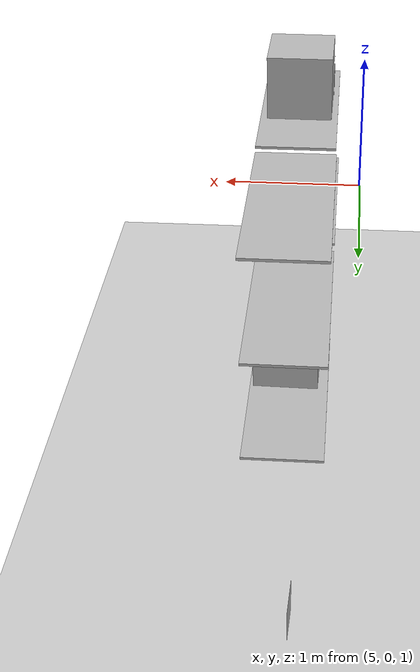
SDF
<sdf version="1.7">
 <world name="default">
  <model name="ground_plane">
   <static>1</static>
   <link name="link">
    <collision name="collision">
     <geometry><plane><normal>0 0 1</normal><size>300 300</size></plane></geometry>
     <surface>
      <contact><collide_bitmask>65535</collide_bitmask></contact>
      <friction><ode><mu>100</mu><mu2>50</mu2></ode></friction>
     </surface>
    </collision>
    <visual name="visual">
     <geometry><plane><normal>0 0 1</normal><size>100 100</size></plane></geometry>
     <material>
      <script><uri>file://media/materials/scripts/gazebo.material</uri><name>Gazebo/Grey</name></script>
     </material>
    </visual>
   </link>
  </model>
  <model name="CuboQR19">
   <link name="link">
    <pose>0 0 0.25 0 -0 0</pose>
    <inertial>
     <mass>0.39</mass>
     <inertia><ixx>0.00058</ixx><ixy>0</ixy><ixz>0</ixz><iyy>0.00058</iyy><iyz>0</iyz><izz>0.00019</izz></inertia>
    </inertial>
    <collision name="collision"><geometry><box><size>0.4 0.4 0.4</size></box></geometry></collision>
    <visual name="visual">
     <geometry><box><size>0.4 0.4 0.4</size></box></geometry>
     <material>
      <script>
       <uri>model://Caja/materials/scripts</uri>
       <uri>model://Caja/materials/textures</uri>
       <name>Caja/Diffuse</name>
      </script>
     </material>
    </visual>
   </link>
   <pose>5.15759 0.816551 2.21624 -1.54376 1.57077 -1.55301</pose>
   <static>1</static>
  </model>
  <model name="CuboQR20">
   <link name="link">
    <pose>0 0 0.25 0 -0 0</pose>
    <inertial>
     <mass>0.39</mass>
     <inertia><ixx>0.00058</ixx><ixy>0</ixy><ixz>0</ixz><iyy>0.00058</iyy><iyz>0</iyz><izz>0.00019</izz></inertia>
    </inertial>
    <collision name="collision"><geometry><box><size>0.4 0.4 0.4</size></box></geometry></collision>
    <visual name="visual">
     <geometry><box><size>0.4 0.4 0.4</size></box></geometry>
     <material>
      <script>
       <uri>model://Caja/materials/scripts</uri>
       <uri>model://Caja/materials/textures</uri>
       <name>Caja/Diffuse</name>
      </script>
     </material>
    </visual>
   </link>
   <pose>5.18164 1.77873 0.844999 0.315724 1.57071 0.295641</pose>
   <static>1</static>
  </model>
  <model name="Plano27">
   <link name="link">
    <gravity>0</gravity>
    <pose>0 0 0.25 0 -0 0</pose>
    <inertial>
     <mass>1e-06</mass>
     <inertia><ixx>0.00058</ixx><ixy>0</ixy><ixz>0</ixz><iyy>0.00058</iyy><iyz>0</iyz><izz>0.00019</izz></inertia>
    </inertial>
    <collision name="collision"><geometry><box><size>0.2 1e-06 0.2</size></box></geometry></collision>
    <visual name="visual">
     <geometry><box><size>0.2 1e-06 0.2</size></box></geometry>
     <material>
      <script>
       <uri>model://Plano27/materials/scripts</uri>
       <uri>model://Plano27/materials/textures</uri>
       <name>Plano27/Diffuse</name>
      </script>
     </material>
    </visual>
   </link>
   <pose>5.20009 0.767776 1.95296 0 0 -1.5745</pose>
  </model>
  <model name="Plano20">
   <link name="link">
    <gravity>0</gravity>
    <pose>0 0 0.25 0 -0 0</pose>
    <inertial>
     <mass>1e-06</mass>
     <inertia><ixx>0.00058</ixx><ixy>0</ixy><ixz>0</ixz><iyy>0.00058</iyy><iyz>0</iyz><izz>0.00019</izz></inertia>
    </inertial>
    <collision name="collision"><geometry><box><size>0.2 1e-06 0.2</size></box></geometry></collision>
    <visual name="visual">
     <geometry><box><size>0.2 1e-06 0.2</size></box></geometry>
     <material>
      <script>
       <uri>model://Plano20/materials/scripts</uri>
       <uri>model://Plano20/materials/textures</uri>
       <name>Plano20/Diffuse</name>
      </script>
     </material>
    </visual>
   </link>
   <pose>5.30498 3.87007 0.611968 0 0 -1.61273</pose>
  </model>
  <model name="unit_box_clone_clone_4">
   <link name="link">
    <inertial>
     <mass>0.00922354</mass>
     <inertia>
      <ixx>0.00104733</ixx>
      <ixy>0</ixy>
      <ixz>0</ixz>
      <iyy>0.000178965</iyy>
      <iyz>0</iyz>
      <izz>0.00122588</izz>
     </inertia>
    </inertial>
    <visual name="visual">
     <geometry><box><size>0.482252 1.16718 0.016436</size></box></geometry>
     <material>
      <script>
       <uri>model://unit_box/materials/scripts</uri>
       <uri>model://unit_box/materials/textures</uri>
       <name>shelveMat/Diffuse</name>
      </script>
      <shader type="pixel"/>
     </material>
    </visual>
    <collision name="collision"><geometry><box><size>0.482252 1.16718 0.016436</size></box></geometry></collision>
   </link>
   <static>1</static>
   <pose>5.40856 2.0487 2.00375 0 -1e-06 -0.002445</pose>
  </model>
  <model name="unit_box_clone_clone_5">
   <link name="link">
    <inertial>
     <mass>0.00922354</mass>
     <inertia>
      <ixx>0.00104733</ixx>
      <ixy>0</ixy>
      <ixz>0</ixz>
      <iyy>0.000178965</iyy>
      <iyz>0</iyz>
      <izz>0.00122588</izz>
     </inertia>
    </inertial>
    <visual name="visual">
     <geometry><box><size>0.482252 1.16718 0.016436</size></box></geometry>
     <material>
      <script>
       <uri>model://unit_box/materials/scripts</uri>
       <uri>model://unit_box/materials/textures</uri>
       <name>shelveMat/Diffuse</name>
      </script>
      <shader type="pixel"/>
     </material>
    </visual>
    <collision name="collision"><geometry><box><size>0.482252 1.16718 0.016436</size></box></geometry></collision>
   </link>
   <static>1</static>
   <pose>5.41145 0.808004 2.00375 0 -1e-06 -0.002445</pose>
  </model>
  <model name="unit_box_clone_clone_clone_clone_1_clone_2_clone_3">
   <link name="link">
    <inertial>
     <mass>0.00922354</mass>
     <inertia>
      <ixx>0.00104733</ixx>
      <ixy>0</ixy>
      <ixz>0</ixz>
      <iyy>0.000178965</iyy>
      <iyz>0</iyz>
      <izz>0.00122588</izz>
     </inertia>
    </inertial>
    <visual name="visual">
     <geometry><box><size>0.482252 1.16718 0.016436</size></box></geometry>
     <material>
      <script>
       <uri>model://unit_box/materials/scripts</uri>
       <uri>model://unit_box/materials/textures</uri>
       <name>shelveMat/Diffuse</name>
      </script>
      <shader type="pixel"/>
     </material>
    </visual>
    <collision name="collision"><geometry><box><size>0.482252 1.16718 0.016436</size></box></geometry></collision>
   </link>
   <static>1</static>
   <pose>5.4068 2.04972 1.33212 0 -1e-06 -0.002445</pose>
  </model>
  <model name="unit_box_clone_clone_clone_clone_1_clone_2_clone_4">
   <link name="link">
    <inertial>
     <mass>0.00922354</mass>
     <inertia>
      <ixx>0.00104733</ixx>
      <ixy>0</ixy>
      <ixz>0</ixz>
      <iyy>0.000178965</iyy>
      <iyz>0</iyz>
      <izz>0.00122588</izz>
     </inertia>
    </inertial>
    <visual name="visual">
     <geometry><box><size>0.482252 1.16718 0.016436</size></box></geometry>
     <material>
      <script>
       <uri>model://unit_box/materials/scripts</uri>
       <uri>model://unit_box/materials/textures</uri>
       <name>shelveMat/Diffuse</name>
      </script>
      <shader type="pixel"/>
     </material>
    </visual>
    <collision name="collision"><geometry><box><size>0.482252 1.16718 0.016436</size></box></geometry></collision>
   </link>
   <static>1</static>
   <pose>5.4025 0.7945 1.33212 0 -1e-06 -0.002445</pose>
  </model>
  <model name="unit_box_clone_clone_clone_clone_1_clone_4_clone_8">
   <link name="link">
    <inertial>
     <mass>0.00922354</mass>
     <inertia>
      <ixx>0.00104733</ixx>
      <ixy>0</ixy>
      <ixz>0</ixz>
      <iyy>0.000178965</iyy>
      <iyz>0</iyz>
      <izz>0.00122588</izz>
     </inertia>
    </inertial>
    <visual name="visual">
     <geometry><box><size>0.482252 1.16718 0.016436</size></box></geometry>
     <material>
      <script>
       <uri>model://unit_box/materials/scripts</uri>
       <uri>model://unit_box/materials/textures</uri>
       <name>shelveMat/Diffuse</name>
      </script>
      <shader type="pixel"/>
     </material>
    </visual>
    <collision name="collision"><geometry><box><size>0.482252 1.16718 0.016436</size></box></geometry></collision>
   </link>
   <static>1</static>
   <pose>5.41445 2.03735 0.642962 0 -1e-06 -0.002445</pose>
  </model>
  <model name="Plano19">
   <link name="link">
    <gravity>0</gravity>
    <pose>0 0 0.25 0 -0 0</pose>
    <inertial>
     <mass>1e-06</mass>
     <inertia><ixx>0.00058</ixx><ixy>0</ixy><ixz>0</ixz><iyy>0.00058</iyy><iyz>0</iyz><izz>0.00019</izz></inertia>
    </inertial>
    <collision name="collision"><geometry><box><size>0.2 1e-06 0.2</size></box></geometry></collision>
    <visual name="visual">
     <geometry><box><size>0.2 1e-06 0.2</size></box></geometry>
     <material>
      <script>
       <uri>model://Plano19/materials/scripts</uri>
       <uri>model://Plano19/materials/textures</uri>
       <name>Plano19/Diffuse</name>
      </script>
     </material>
    </visual>
   </link>
   <pose>5.22686 1.76626 0.611026 0 0 -1.5842</pose>
  </model>
 </world>
</sdf>
